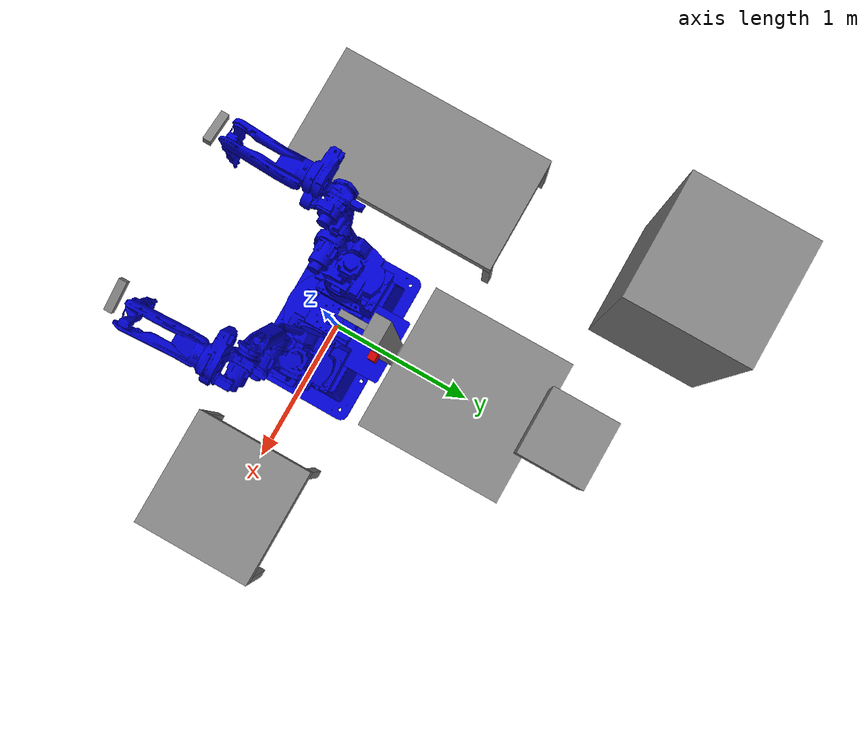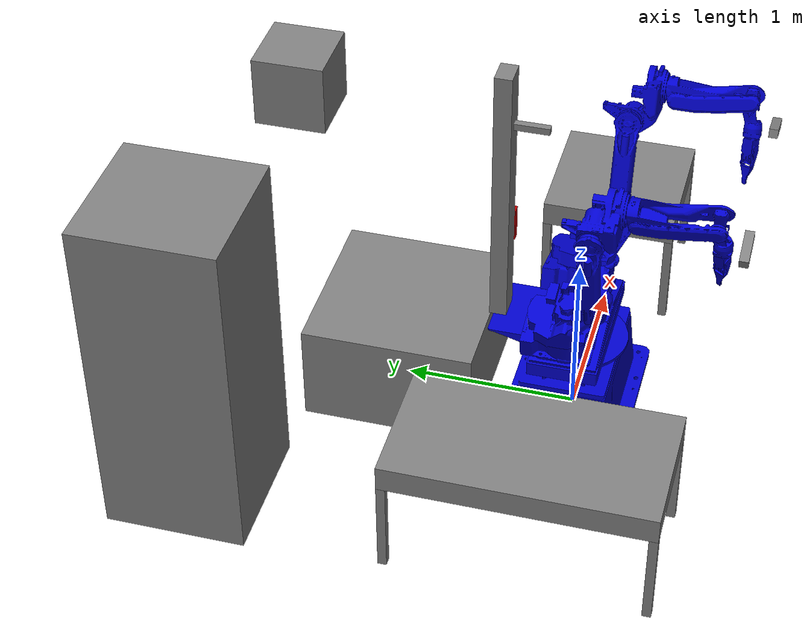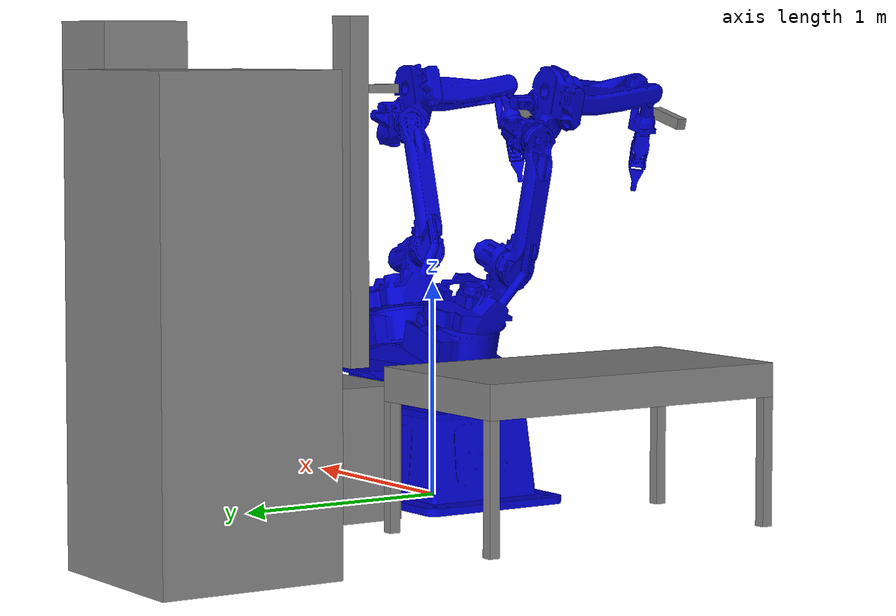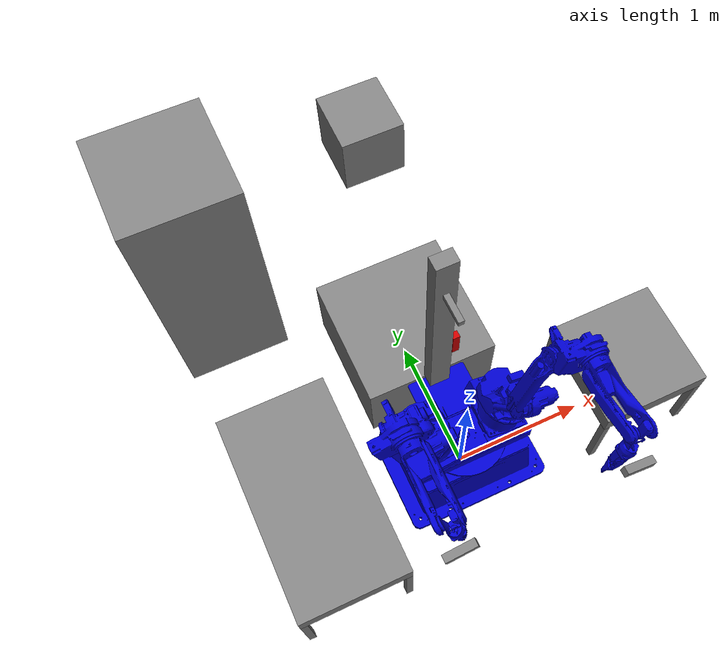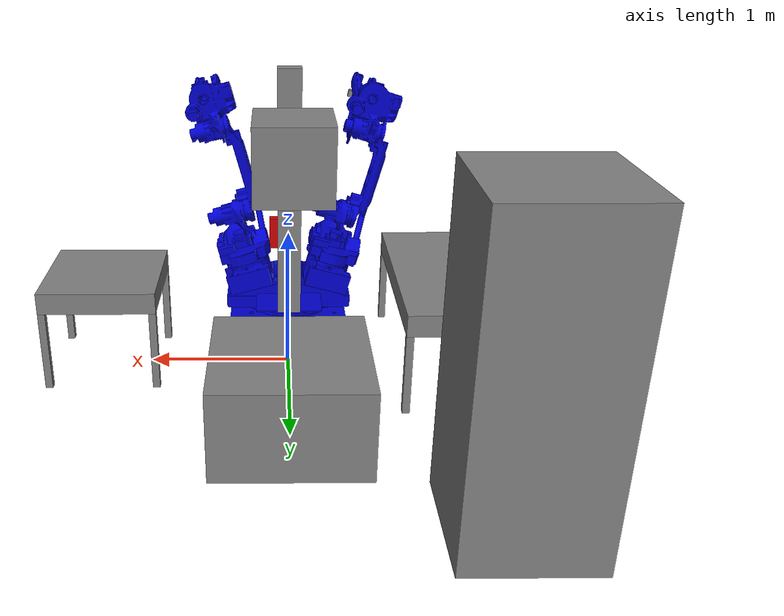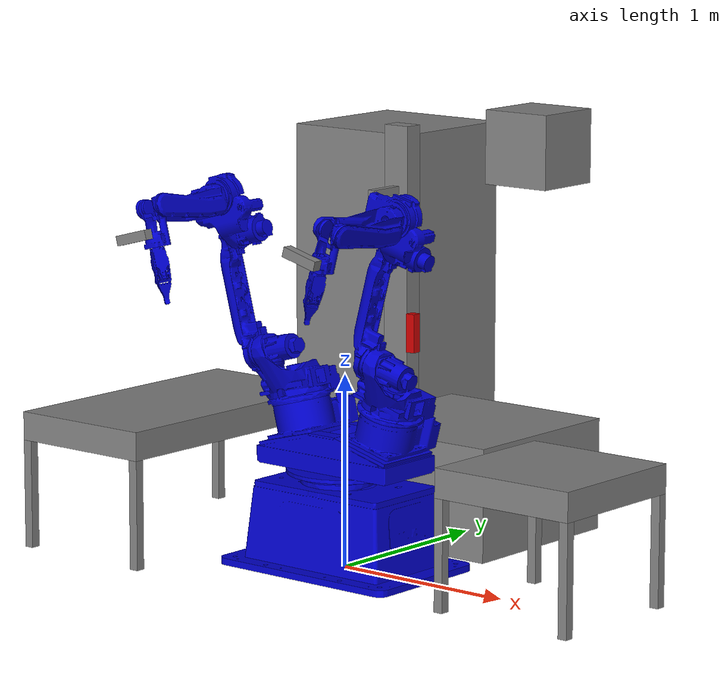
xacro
<?xml version="1.0"?>
<robot xmlns:xacro="http://www.ros.org/wiki/xacro" name="clopema">
    <include filename="$(find clopema_description)/urdf/common.urdf.xacro" />
    <include filename="$(find
clopema_description)/urdf/room_certh.urdf.xacro" />
    <include filename="$(find clopema_description)/urdf/base_link.urdf.xacro" />
    <include filename="$(find
clopema_description)/urdf/ma1400/ma1400.urdf.xacro" />
    <include filename="$(find clopema_description)/urdf/gripper.urdf.xacro" />
    <include filename="$(find clopema_description)/urdf/r750.urdf.xacro" />
    <include filename="$(find clopema_description)/urdf/table_adjustable.urdf.xacro" />
    <include filename="$(find
clopema_description)/urdf/colObjects.urdf.xacro" />
    <include filename="$(find clopema_description)/urdf/dx100.urdf.xacro" />
    <include filename="$(find clopema_description)/urdf/xtion3.urdf.xacro" />
    <include filename="$(find clopema_description)/urdf/xtion.urdf.xacro" />
	<xacro:include filename="$(find clopema_description)/urdf/alvar_marker.urdf.xacro" />
<xacro:include filename="$(find clopema_description)/urdf/robot_head_UG.xacro" />

    <xacro:base_link/>
    <xacro:room_certh/>
    <xacro:r750 parent="base_link" suffix="" color="blue">
        <origin xyz="0.0 0.0 0.0" rpy="0 0 0"/>
    </xacro:r750>

    <xacro:ma1400 parent="r750" suffix="r1_" color="blue">
        <origin xyz="0 -.25 0.1600" rpy="${15*TO_RAD} 0 0"/>
    </xacro:ma1400>
    <xacro:ma1400 parent="r750" suffix="r2_" color="blue">
        <origin xyz="0 .25 0.1600" rpy="-${15*TO_RAD} 0 0"/>
    </xacro:ma1400>

    <xacro:gripper parent="tip_link" suffix="r1_" color="blue">
        <origin xyz="0.000 0 0.02" rpy="0 0 ${PI/2+PI/6}"/>
    </xacro:gripper>
    <xacro:gripper parent="tip_link" suffix="r2_" color="blue">
        <origin xyz="0.000 0 0.02" rpy="0 0 ${PI/2+PI/6}"/>
    </xacro:gripper>

    <link name="box_pc">
        <visual>
            <geometry>
                <box size="1.0 1.00 0.6" />
            </geometry>
            <material name="grey" />
            </visual>
        <collision>
            <geometry>
                <box size="1.0 1.00 0.6" />
            </geometry>
        </collision>
    </link>

    <joint name="joint_fbox_pc" type="fixed">
        <origin xyz="0 1.0 0.3" rpy="0 0 0"/>
        <parent link="base_link"/>
        <child link="box_pc"/>
    </joint>s

    <link name="cable_holder">
        <visual>
            <geometry>
                <box size="0.4 0.40 0.40" />
            </geometry>
            <material name="grey" />
            </visual>
        <collision>
            <geometry>
                <box size="0.4 0.40 0.40" />
            </geometry>
        </collision>
    </link>

    <joint name="joint_fcable_holder" type="fixed">
        <origin xyz="0 1.6 2.0" rpy="0 0 0"/>
        <parent link="base_link"/>
        <child link="cable_holder"/>
    </joint>

    <link name="camera_stick">
        <visual>
            <geometry>
                <box size="0.1 0.15 1.6" />
            </geometry>
            <material name="grey" />
            <origin xyz="-0.00 0 0.80"/>
        </visual>
        <collision>
            <geometry>
                <box size="0.1 0.15 1.6" />
            </geometry>
            <origin xyz="-0.00 0 0.80"/>
        </collision>
    </link>

    <link name="camera_holder">
        <visual>
            <geometry>
                <box size="0.04 0.20 0.04" />
            </geometry>
            <origin xyz="0 -0.1 0" rpy="0 0 0"/>
            <material name="grey" />
            </visual>
        <collision>
            <geometry>
                <box size="0.04 0.20 0.04" />
            </geometry>
            <origin xyz="0 -0.1 0" rpy="0 0 0"/>
        </collision>
    </link>

    <joint name="joint_fcamera_stick" type="fixed">
        <origin xyz="-0.450 0 0.12" rpy="0 0 0"/>
        <parent link="r750"/>
        <child link="camera_stick"/>
    </joint>

    <joint name="joint_fcamera_holder" type="fixed">
        <origin xyz="0.05 0 1.27" rpy="0 0 ${PI/2}"/>
        <parent link="camera_stick"/>
        <child link="camera_holder"/>
    </joint>

    <xacro:xtion parent="r2_link_6" suffix="2" prefix="" color="grey">
        <origin xyz="-0.13 -0.15 0" rpy="0 ${-PI/2} 0"/>
    </xacro:xtion>
    <xacro:xtion parent="r1_link_6" suffix="1" prefix="" color="grey">
        <origin xyz="-0.13 -0.15 0" rpy="0 ${-PI/2} 0"/>
    </xacro:xtion>

<!-- table r2 -->
    <xacro:table parent="base_link" suffix="t2_" color="grey" height="0.72" deskx="0.8" desky="0.8">
        <origin xyz="1.3 0 0.72" rpy="0 0 0"/>
    </xacro:table>

<!-- table r1 -->
    <xacro:table parent="base_link" suffix="t1_" color="grey" height="0.72" deskx="0.8" desky="1.5">
        <origin xyz="-1.15 0 0.72" rpy="0 0 0"/>
    </xacro:table>

<!-- front table  -->

    <xacro:dx100 parent="base_link" color="grey" height="2">
            <origin xyz="-1.215 1.895 0.0" rpy="0 0 0"/>
    </xacro:dx100>

 <xacro:xtion suffix="3" parent="torso_link"  prefix="" color="red" >
        <origin xyz="0.1 0.42 1.19" rpy="0 ${PI/2} 0"/>
    </xacro:xtion>

<link name="torso_link"/>
<joint name="torso_link_f" type="fixed">
	<child link="torso_link"/>
	<parent link="r750"/>
	<origin xyz="0 0 -0.51" rpy="0 0 ${PI/2}"/>
</joint>

<link name="r1_gg"/>
<joint name="r1_gg_joint_t" type="fixed">
	<child link="r1_gg"/>
	<parent link="r1_ee"/>
	<origin xyz="-0.025 0 0" rpy="0 0 0"/>
</joint>

<link name="r2_gg"/>
<joint name="r2_gg_joint_t" type="fixed">
	<child link="r2_gg"/>
	<parent link="r2_ee"/>
	<origin xyz="-0.025 0 0" rpy="0 0 0"/>
</joint>

<xacro:alvar_marker parent="r1_tip_link" suffix="r1" width="0.052">
        <origin xyz="-0.015 0.0259 0.065" rpy=" ${PI/6} ${-PI/2} ${-PI/2} "/>
    </xacro:alvar_marker>

</robot>

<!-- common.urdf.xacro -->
<robot xmlns:xacro="http://www.ros.org/wiki/xacro">

	<xacro:property name="PI" value="3.14159265" />
	<xacro:property name="TO_RAD" value="0.017453292" />

	<xacro:macro name="default_inertial">
		<inertial>
			<mass value="1.0" />
			<inertia ixx="1.0" ixy="0.0" ixz="0.0" iyy="1.0" iyz="0.0" izz="1.0" />
		</inertial>
	</xacro:macro>
	<material name="blue">
		<color rgba="0 0 .8 1"/>
	</material>
	<material name="red">
		<color rgba=".8 0 0 1"/>
	</material>
	<material name="green">
		<color rgba="0 .8 0 1"/>
	</material>
	<material name="white">
		<color rgba="1 1 1 1"/>
	</material>
	<material name="grey">
		<color rgba="0.5 0.5 0.5 1"/>
	</material>
	<material name="black">
		<color rgba="0.0 0.0 0.0 1"/>
	</material>
</robot>

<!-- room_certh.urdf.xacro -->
<robot xmlns:xacro="http://www.ros.org/wiki/xacro">
	<xacro:macro name="room_certh">
		<link name="certh_floor">
			<xacro:default_inertial/>
			<collision>
				<geometry>
					<box size="4.220 5.535 0.3"/>
				</geometry>
				<origin xyz="0.0 0.0 0.0"/>
			</collision>
		</link>
		<link name="certh_roof">
			<xacro:default_inertial/>
			<collision>
				<geometry>
					<box size="4.220 5.535 0.2"/>
				</geometry>
				<origin xyz="0.0 0.0 0.0"/>
			</collision>
		</link>
		<link name="certh_wall_1">
			<xacro:default_inertial/>
			<collision>
				<geometry>
					<box size="4.813 0.2 2.45"/>
				</geometry>
				<origin xyz="-2.4065 0.0 0" rpy="0 0 0"/>
			</collision>
		</link>
		<link name="certh_wall_2">
			<xacro:default_inertial/>
			<collision>
				<geometry>
					<box size="4.220 0.2 2.45"/>
				</geometry>
				<origin xyz="0.0 0.0 0" rpy="0 0 0"/>
			</collision>
		</link>
		<link name="certh_wall_3">
			<xacro:default_inertial/>
			<collision>
				<geometry>
					<box size="0.2 3.370 2.45"/>
				</geometry>
				<origin xyz="0.0 0.0 0.0" rpy="0 0 0"/>
			</collision>
		</link>
		<link name="certh_wall_4">
			<xacro:default_inertial/>
			<collision>
				<geometry>
					<box size="0.200 5.535 2.45"/>
				</geometry>
				<origin xyz="0.0 0.0 0.0" rpy="0 0 0"/>
			</collision>
		</link>
		<joint name="certh_f_floor" type="fixed">
                        <origin xyz="-0.015 0.2975 0.0" rpy="0 0 0"/>
                        <parent link="base_link"/>
                        <child link="certh_floor"/>
                </joint>
		<joint name="certh_f_roof_1" type="fixed">
                        <origin xyz="-0.015 0.2975 2.45" rpy="0 0 0"/>
                        <parent link="base_link"/>
                        <child link="certh_roof"/>
                </joint>
		<joint name="certh_f_wall_1" type="fixed">
			<origin xyz="0.0 1.6085 0.0" rpy="0 0 ${-30*TO_RAD}"/>
                        <parent link="certh_wall_3"/>
                        <child link="certh_wall_1"/>
                </joint>
		<joint name="certh_f_wall_2" type="fixed">
			<origin xyz="-0.01 -2.47 1.225" rpy="0 0 0"/>
                        <parent link="base_link"/>
                        <child link="certh_wall_2"/>
                </joint>
		<joint name="certh_f_wall_3" type="fixed">
			<origin xyz="2.09 -0.785 1.225" rpy="0 0 0"/>
                        <parent link="base_link"/>
                        <child link="certh_wall_3"/>
                </joint>
		<joint name="certh_f_wall_4" type="fixed">
			<origin xyz="-2.11 0.2975 1.225" rpy="0 0 0"/>
                        <parent link="base_link"/>
                        <child link="certh_wall_4"/>
                </joint>
	</xacro:macro>
</robot>

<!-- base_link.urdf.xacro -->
<robot xmlns:xacro="http://www.ros.org/wiki/xacro">
	<xacro:macro name="base_link">
		<link name="base_link">
		</link>
	</xacro:macro>
</robot>

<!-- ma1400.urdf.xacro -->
<robot xmlns:xacro="http://www.ros.org/wiki/xacro">

	<xacro:include filename="$(find clopema_description)/urdf/ma1400/link_1.urdf.xacro" />
	<xacro:include filename="$(find clopema_description)/urdf/ma1400/link_2.urdf.xacro" />
	<xacro:include filename="$(find clopema_description)/urdf/ma1400/link_3.urdf.xacro" />
	<xacro:include filename="$(find clopema_description)/urdf/ma1400/link_4.urdf.xacro" />
	<xacro:include filename="$(find clopema_description)/urdf/ma1400/link_5.urdf.xacro" />
	<xacro:include filename="$(find clopema_description)/urdf/ma1400/link_6.urdf.xacro" />
	<xacro:include filename="$(find clopema_description)/urdf/ma1400/tip_link.urdf.xacro" />

	<xacro:macro name="ma1400" params="*origin parent suffix color">

		<xacro:link_1 parent="${parent}" suffix="${suffix}" color="${color}">
			<insert_block name="origin" />
		</xacro:link_1>
		<xacro:link_2 parent="link_1" suffix="${suffix}" color="${color}">
			<origin xyz="0.0 0.0 0.0" rpy="0 0 0"/>
		</xacro:link_2>
		<xacro:link_3 parent="link_2" suffix="${suffix}" color="${color}">
			<origin xyz="0.150 0 ${0.2715+0.1785}" rpy="-${PI/2} 0 0"/>
		</xacro:link_3>
		<xacro:link_4 parent="link_3" suffix="${suffix}" color="${color}">
			<origin xyz="0.0 -0.614 0" rpy="${PI} 0 ${-PI/2}"/>
		</xacro:link_4>
		<xacro:link_5 parent="link_4" suffix="${suffix}" color="${color}">
			<origin xyz="0.2 0 0.0" rpy="${-PI/2} 0 0"/>
		</xacro:link_5>
		<xacro:link_6 parent="link_5" suffix="${suffix}" color="${color}">
			<origin xyz="0 0 -0.640" rpy="${PI/2} 0 0"/>
		</xacro:link_6>
		<xacro:tip_link parent="link_6" suffix="${suffix}" color="${color}">
			<origin xyz="0 -0.03 0" rpy="${PI/2} 0 ${-PI/2}"/>
		</xacro:tip_link>
	</xacro:macro>
</robot>

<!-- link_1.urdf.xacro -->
<robot xmlns:xacro="http://www.ros.org/wiki/xacro">
	<xacro:macro name="link_1" params="*origin parent suffix color">
		<link name="${suffix}link_1">
			<xacro:default_inertial/>
			<visual>
				<geometry>
					<mesh scale="0.001 0.001 0.001" filename="package://clopema_description/meshes/link1.stl"/>
				</geometry>
				<material name="${color}" />
				<origin xyz="0 0 0"/>
			</visual>
			<collision>
				<geometry>
					<box size="0.3962 0.303 0.1785"/>
				</geometry>
				<origin xyz="-0.0451 -0.0015 0.08925"/>
			</collision>
		</link>
		<joint name="${suffix}joint_f1" type="fixed">
			<insert_block name="origin" />
			<parent link="${parent}"/>
			<child link="${suffix}link_1"/>
		</joint>
	</xacro:macro>
</robot>

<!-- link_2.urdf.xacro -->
<robot xmlns:xacro="http://www.ros.org/wiki/xacro">
	<xacro:macro name="link_2" params="*origin parent suffix color">
		<link name="${suffix}link_2">
			<xacro:default_inertial/>
			<visual>
				<geometry>
					<mesh scale="0.001 0.001 0.001" filename="package://clopema_description/meshes/link2.stl"/>
				</geometry>
				<material name="${color}" />
				<origin xyz="0 0 0"/>
			</visual>
			<collision>
				<geometry>
					<box size="0.47 0.400 0.4000"/>
				</geometry>
				<origin xyz="0.015 0.0 ${0.20+0.1785}"/>
			</collision>
		</link>
		<joint name="${suffix}joint_s" type="revolute">
			<axis xyz="0 0 1" />
			<limit lower="-${170*TO_RAD}" upper="${170*TO_RAD}" velocity="${220*TO_RAD}" effort="1000.0" />
			<child link="${suffix}link_2"/>
			<insert_block name="origin" />
			<parent link="${suffix}${parent}"/>
		</joint>
	</xacro:macro>
</robot>

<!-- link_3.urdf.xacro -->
<robot xmlns:xacro="http://www.ros.org/wiki/xacro">
	<xacro:macro name="link_3" params="*origin parent suffix color">
		<link name="${suffix}link_3">
			<xacro:default_inertial/>
			<visual>
				<geometry>
					<mesh scale="0.001 0.001 0.001" filename="package://clopema_description/meshes/link3.stl"/>
				</geometry>
				<material name="${color}" />
				<origin xyz="-0.150 0.450 0" rpy="${PI/2} 0 0"/>
			</visual>
			<collision>
				<geometry>
					<box size="0.175 0.175 0.800"/>
				</geometry>
				<origin xyz="0 -0.3 -0.125" rpy="${PI/2} 0 0"/>
			</collision>
		</link>
		<joint name="${suffix}joint_l" type="revolute">
			<axis xyz="0 0 1"/>
			<limit lower="-${90*TO_RAD}" upper="${155*TO_RAD}" velocity="${200*TO_RAD}" effort="1000.0" />
			<child link="${suffix}link_3"/>
			<insert_block name="origin" />
			<parent link="${suffix}${parent}"/>
		</joint>
	</xacro:macro>
</robot>

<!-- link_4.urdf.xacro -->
<robot xmlns:xacro="http://www.ros.org/wiki/xacro">
	<xacro:macro name="link_4" params="*origin parent suffix color">
		<link name="${suffix}link_4">
			<xacro:default_inertial/>
			<visual>
				<geometry>
					<mesh scale="0.001 0.001 0.001" filename="package://clopema_description/meshes/link4.stl"/>
				</geometry>
				<material name="${color}" />
				<origin xyz="-1.064 0.15 0" rpy="${-PI/2} 0 ${-PI/2}"/>
			</visual>
			<collision>
				<geometry>
					<box size="0.3500 0.3600 0.39"/>
				</geometry>
				<origin xyz="0.115 -0.005 0.0225" rpy="${-PI/2} 0 ${-PI/2}"/>
			</collision>
		</link>
		<joint name="${suffix}joint_u" type="revolute">
			<axis xyz="0 0 1" />
			<limit lower="-${80*TO_RAD}" upper="${92*TO_RAD}" velocity="${220*TO_RAD}" effort="1000.0" />
			<child link="${suffix}link_4"/>
			<insert_block name="origin" />
			<parent link="${suffix}${parent}"/>
		</joint>
	</xacro:macro>
</robot>

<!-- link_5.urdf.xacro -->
<robot xmlns:xacro="http://www.ros.org/wiki/xacro">
	<xacro:macro name="link_5" params="*origin parent suffix color">
		<link name="${suffix}link_5">
			<xacro:default_inertial/>
			<visual>
				<geometry>
					<mesh scale="0.001 0.001 0.001" filename="package://clopema_description/meshes/link5.stl"/>
				</geometry>
				<material name="${color}" />
				<origin xyz="-1.264 0 0.150" rpy="0 ${PI/2} 0"/>
			</visual>
			<collision>
				<geometry>
					<box size="0.170 0.176 0.60"/>
				</geometry>
				<origin xyz="-0.01 0.006 -${0.68/2 + 0.15/2}"/>
			</collision>
		</link>
		<joint name="${suffix}joint_r" type="revolute">
			<axis xyz="0 0 1" />
			<limit lower="-${150*TO_RAD}" upper="${150*TO_RAD}" velocity="${410*TO_RAD}" effort="1000.0" />
			<child link="${suffix}link_5"/>
			<insert_block name="origin" />
			<parent link="${suffix}${parent}"/>
		</joint>
	</xacro:macro>
</robot>

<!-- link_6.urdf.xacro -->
<robot xmlns:xacro="http://www.ros.org/wiki/xacro">
	<xacro:macro name="link_6" params="*origin parent suffix color">
		<link name="${suffix}link_6">
			<xacro:default_inertial/>
			<visual>
				<geometry>
					<mesh scale="0.001 0.001 0.001" filename="package://clopema_description/meshes/link6.stl"/>
				</geometry>
				<material name="${color}" />
				<origin xyz="-1.264 0.79 0" rpy="${-PI/2} 0 ${-PI/2}"/>
			</visual>
			<collision>
				<geometry>
					<mesh scale="0.001 0.001 0.001" filename="package://clopema_description/meshes/link6col.stl"/>
				</geometry>
				<origin xyz="-1.264 0.79 0" rpy="${-PI/2} 0 ${-PI/2}"/>
			</collision>
		</link>
		<joint name="${suffix}joint_b" type="revolute">
			<axis xyz="0 0 1" />
			<limit lower="-${45*TO_RAD}" upper="${180*TO_RAD}" velocity="${410*TO_RAD}" effort="1000.0" />
			<child link="${suffix}link_6"/>
			<insert_block name="origin" />
			<parent link="${suffix}${parent}"/>
		</joint>
	</xacro:macro>
</robot>

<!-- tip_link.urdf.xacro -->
<robot xmlns:xacro="http://www.ros.org/wiki/xacro">
	<xacro:macro name="tip_link" params="*origin parent suffix color">
		<link name="${suffix}link_7">
			<xacro:default_inertial/>
		</link>
		<link name="${suffix}tip_link">
			<xacro:default_inertial/>
		</link>
		<joint name="${suffix}joint_t" type="revolute">
			<axis xyz="0 0 1" />
			<limit lower="-${199*TO_RAD}" upper="${199*TO_RAD}" velocity="${610*TO_RAD}" effort="1000.0" />
			<child link="${suffix}link_7"/>
			<insert_block name="origin" />
			<parent link="${suffix}${parent}"/>
		</joint>
		<joint name="${suffix}joint_t_f" type="fixed">
			<parent link="${suffix}link_7"/>
			<child link="${suffix}tip_link"/>
			<origin xyz="0 0 0.2" rpy="0 0 0"/>
		</joint>
	</xacro:macro>
</robot>

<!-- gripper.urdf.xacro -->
<robot xmlns:xacro="http://www.ros.org/wiki/xacro">
	<xacro:macro name="gripper" params="*origin parent suffix color">
		<link name="${suffix}gripper">
			<xacro:default_inertial/>
			<visual>
				<geometry>
					<mesh scale="0.001 0.001 0.001" filename="package://clopema_description/meshes/gripper_v0.stl"/>
				</geometry>
				<material name="${color}" />
				<origin xyz="0 0 0.000" rpy="${-PI/2} 0 0"/>
			</visual>
			<collision>
				<geometry>
					<box size="0.09 0.35 0.08"/>
				</geometry>
				<origin xyz="0 0 0.125" rpy="${-PI/2} 0 0"/>
			</collision>
		</link>
		<joint name="${suffix}joint_fgrip" type="fixed">
			<child link="${suffix}gripper"/>
			<insert_block name="origin" />
			<parent link="${suffix}${parent}"/>
		</joint>
		<link name="${suffix}ee"/>
		<joint name="${suffix}joint_fee" type="fixed">
			<child link="${suffix}ee"/>
			<parent link="${suffix}gripper"/>
			<origin xyz="0 0 0.300" rpy="0 0 0"/>
		</joint>
		<link name="${suffix}ps"/>
		<joint name="${suffix}joint_fps" type="fixed">
			<child link="${suffix}ps"/>
			<parent link="${suffix}gripper"/>
            <origin xyz="0.03 0 0.185" rpy="0 ${PI/2 - PI/8} 0"/>
		</joint>
		<link name="${suffix}gripper_status"/>
		<joint name="${suffix}joint_grip" type="prismatic">
			<axis xyz="0 1 0"/>
			<limit lower="0" upper="1" velocity="1000.0" effort="1000.0" />
			<child link="${suffix}gripper_status"/>
			<insert_block name="origin" />
			<parent link="${suffix}gripper"/>
		</joint>

	</xacro:macro>
</robot>

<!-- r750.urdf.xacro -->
<robot xmlns:xacro="http://www.ros.org/wiki/xacro">
	<xacro:macro name="r750" params="*origin parent suffix color">
		<link name="${suffix}r750_base">
			<xacro:default_inertial/>
			<visual>
				<geometry>
					<mesh scale="0.001 0.001 0.001" filename="package://clopema_description/meshes/r750_base.stl"/>
				</geometry>
				<material name="${color}" />
				<origin xyz="-0.545 0.37 0.0" rpy="${PI/2} 0 0"/>
			</visual>
			<collision>
				<geometry>
					<box size="1.09 0.74 0.51" />
				</geometry>
				<origin xyz="0 0 0.255"/>
			</collision>
		</link>
		<link name="${suffix}r750">
			<xacro:default_inertial/>
			<visual>
				<geometry>
					<mesh scale="0.001 0.001 0.001" filename="package://clopema_description/meshes/r750.stl"/>
				</geometry>
				<material name="${color}" />
				<origin xyz="0 0 0.060" rpy="${90*TO_RAD} 0 ${90*TO_RAD}"/>
			</visual>
			<collision>
				<geometry>
					<mesh scale="0.001 0.001 0.001" filename="package://clopema_description/meshes/r750col.stl"/>
				</geometry>
				<origin xyz="0 0 0.060" rpy="${90*TO_RAD} 0 ${90*TO_RAD}"/>
			</collision>
		</link>
		<joint name="${suffix}ext_axis" type="revolute">
			<axis xyz="0 0 1" />
			<limit lower="-${115*TO_RAD}" upper="${115*TO_RAD}" velocity="${163*TO_RAD}" effort="1000.0" />
			<child link="${suffix}r750"/>
			<origin xyz="0 0 0.51" rpy="0 0 -${PI/2}"/>
			<parent link="${suffix}r750_base"/>
		</joint>

		<joint name="${suffix}joint_f0" type="fixed">
			<insert_block name="origin" />
			<parent link="${parent}"/>
			<child link="${suffix}r750_base"/>
		</joint>
	</xacro:macro>
</robot>

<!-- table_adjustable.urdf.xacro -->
<robot xmlns:xacro="http://www.ros.org/wiki/xacro">

	<xacro:macro name="table_leg" params="*origin parent suffix color height">
		<link name="${suffix}">
			<xacro:default_inertial/>
			<visual>
				<geometry>
					<box size="0.05 0.05 ${height-0.150}" />
				</geometry>
				<material name="${color}" />
				<origin xyz="0.025 0.025 -${(height+0.15)/2}"/>
			</visual>
		</link>
		<joint name="${suffix}joint_ftable_leg" type="fixed">
			<insert_block name="origin" />
			<parent link="${parent}"/>
			<child link="${suffix}"/>
		</joint>
	</xacro:macro>
	<xacro:macro name="table" params="*origin parent suffix color height deskx desky">
		<link name="${suffix}desk">
			<xacro:default_inertial/>
			<visual>
				<geometry>
					<box size="${deskx} ${desky} 0.15" />
				</geometry>
				<material name="${color}" />
				<origin xyz="0 0 ${-0.075}"/>
			</visual>
		</link>
		<joint name="${suffix}joint_ftable" type="fixed">
			<insert_block name="origin" />
			<parent link="${parent}"/>
			<child link="${suffix}desk"/>
		</joint>
		<xacro:table_leg parent="${suffix}desk" suffix="${suffix}leg_1" color="${color}" height="${height}">
			<origin xyz="${deskx/2} ${desky/2} 0.0" rpy="0 0 ${PI}"/>
		</xacro:table_leg>
		<xacro:table_leg parent="${suffix}desk" suffix="${suffix}leg_2" color="${color}" height="${height}">
			<origin xyz="${deskx/2} -${desky/2} 0.0" rpy="0 0 ${PI/2}"/>
		</xacro:table_leg>
		<xacro:table_leg parent="${suffix}desk" suffix="${suffix}leg_3" color="${color}" height="${height}">
			<origin xyz="-${deskx/2} -${desky/2} 0.0" rpy="0 0 0"/>
		</xacro:table_leg>
		<xacro:table_leg parent="${suffix}desk" suffix="${suffix}leg_4" color="${color}" height="${height}">
			<origin xyz="-${deskx/2} ${desky/2} 0.0" rpy="0 0 ${-PI/2}"/>
		</xacro:table_leg>
	</xacro:macro>
</robot>

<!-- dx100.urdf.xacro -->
<robot xmlns:xacro="http://www.ros.org/wiki/xacro">
	<xacro:macro name="dx100" params="*origin parent color height">
		<link name="dx100">
			<xacro:default_inertial/>
			<visual>
				<geometry>
					<box size="0.8 0.8 ${height}" />
				</geometry>
				<material name="${color}" />
				<origin xyz="0 0 ${height/2}"/>
			</visual>
			<collision>
				<geometry>
					<box size="0.8 0.8 ${height}" />
				</geometry>
				<origin xyz="0 0 ${height/2}"/>
			</collision>
		</link>
		<joint name="joint_f_dx100" type="fixed">
			<insert_block name="origin" />
			<parent link="${parent}"/>
			<child link="dx100"/>
		</joint>
	</xacro:macro>
</robot>

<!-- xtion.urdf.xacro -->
<robot xmlns:xacro="http://www.ros.org/wiki/xacro">
<xacro:macro name="xtion" params="*origin parent suffix color prefix">
	<link name="${prefix}xtion${suffix}_link_ee"/>
	<link name="${prefix}xtion${suffix}_rgb_optical_frame"/>
	<link name="${prefix}xtion${suffix}_depth_optical_frame"/>
	<link name="${prefix}xtion${suffix}_rgb_frame"/>
	<link name="${prefix}xtion${suffix}_depth_frame"/>
	<link name="${prefix}xtion${suffix}_link">
		<xacro:default_inertial/>
		<visual>
			<geometry>
				<box size="0.20 0.05 0.05" />
			</geometry>
			<material name="${color}"/>
			<origin xyz="0.0225 0 0"/>
		</visual>
		<collision>
			<geometry>
				<box size="0.20 0.05 0.05" />
			</geometry>
			<origin xyz="0.0225 0 0"/>
		</collision>
	</link>

	<!-- Optical frames -->
	<joint name="${prefix}joint_fxtion${suffix}_rgb_optical_frame" type="fixed">
		<origin xyz="0 0 0" rpy="0 0 0"/>
		<parent link="${prefix}xtion${suffix}_link_ee"/>
		<child link="${prefix}xtion${suffix}_rgb_optical_frame"/>
	</joint>
	<joint name="${prefix}joint_fxtion${suffix}_depth_optical_frame" type="fixed">
		<origin xyz="-0.025 0 0" rpy="0 0 0"/>
		<parent link="${prefix}xtion${suffix}_rgb_optical_frame"/>
		<child link="${prefix}xtion${suffix}_depth_optical_frame"/>
	</joint>

	<!-- Collision and IKT links -->
	<joint name="${prefix}joint_fxtion${suffix}_link" type="fixed">
		<origin xyz="0 0 0" rpy="0 0 0"/>
		<parent link="${prefix}xtion${suffix}_link_ee"/>
		<child link="${prefix}xtion${suffix}_link"/>
	</joint>
	<joint name="${prefix}joint_fxtion${suffix}_link_ee" type="fixed">
		<insert_block name="origin"/>
		<parent link="${parent}"/>
		<child link="${prefix}xtion${suffix}_link_ee"/>
	</joint>

	<!--Non optical frames-->
	<joint name="${prefix}joint_fxtion${suffix}_rgb_frame" type="fixed">
		<origin xyz="0 0 0" rpy="${PI/2} -${PI/2} 0"/>
		<parent link="${prefix}xtion${suffix}_rgb_optical_frame"/>
		<child link="${prefix}xtion${suffix}_rgb_frame"/>
	</joint>
	<joint name="${prefix}joint_fxtion${suffix}_depth_frame" type="fixed">
		<origin xyz="0 0 0" rpy="${PI/2} -${PI/2} 0"/>
		<parent link="${prefix}xtion${suffix}_depth_optical_frame"/>
		<child link="${prefix}xtion${suffix}_depth_frame"/>
	</joint>
</xacro:macro>
</robot>

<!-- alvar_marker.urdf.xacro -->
<robot xmlns:xacro="http://www.ros.org/wiki/xacro">
	<xacro:macro name="alvar_marker" params="*origin parent suffix width">

		<link name="alvar_${suffix}_center"></link>

		<link name="alvar_${suffix}_leftDown"></link>
		<link name="alvar_${suffix}_rightDown"></link>
		<link name="alvar_${suffix}_leftUp"></link>
		<link name="alvar_${suffix}_rightUp"></link>

		<joint name="alvar_${suffix}_center_joint" type="fixed">
			<insert_block name="origin"/>
			<parent link="${parent}"/>
			<child link="alvar_${suffix}_center" />
		</joint>

		<joint name="alvar_${suffix}_leftDown_joint" type="fixed">
			<origin xyz="-${width/2} -${width/2} 0" rpy="0 0 0"/>
			<parent link="alvar_${suffix}_center"/>
			<child link="alvar_${suffix}_leftDown"/>
		</joint>

        <joint name="alvar_${suffix}_rightDown_joint" type="fixed">
			<origin xyz="${width/2} -${width/2} 0" rpy="0 0 0"/>
			<parent link="alvar_${suffix}_center"/>
			<child link="alvar_${suffix}_rightDown"/>
        </joint>

        <joint name="alvar_${suffix}_leftUp_joint" type="fixed">
			<origin xyz="-${width/2} ${width/2} 0" rpy="0 0 0"/>
			<parent link="alvar_${suffix}_center"/>
			<child link="alvar_${suffix}_leftUp"/>
        </joint>

        <joint name="alvar_${suffix}_rightUp_joint" type="fixed">
			<origin xyz="${width/2} ${width/2} 0" rpy="0 0 0"/>
			<parent link="alvar_${suffix}_center"/>
			<child link="alvar_${suffix}_rightUp"/>
        </joint>

	</xacro:macro>
</robot>
